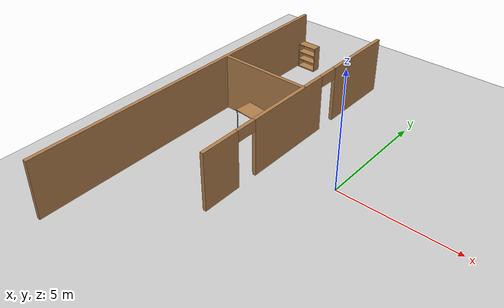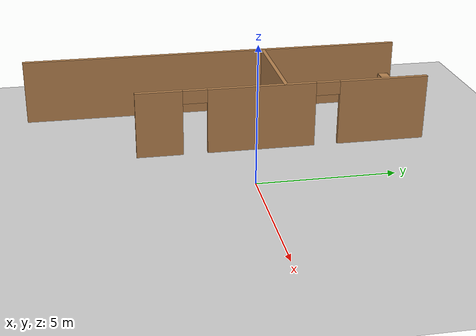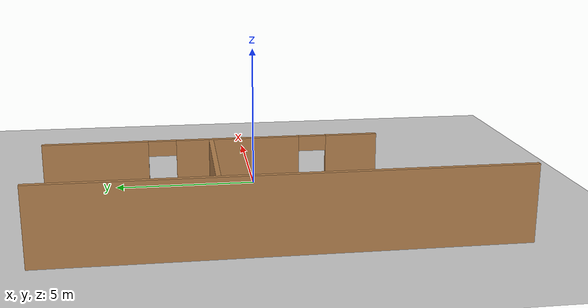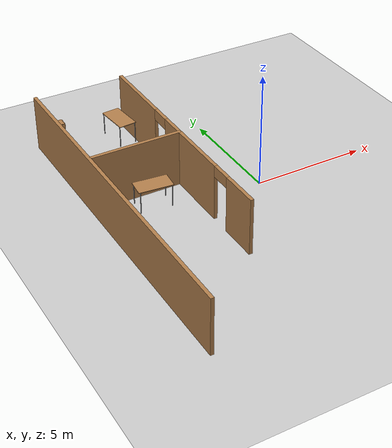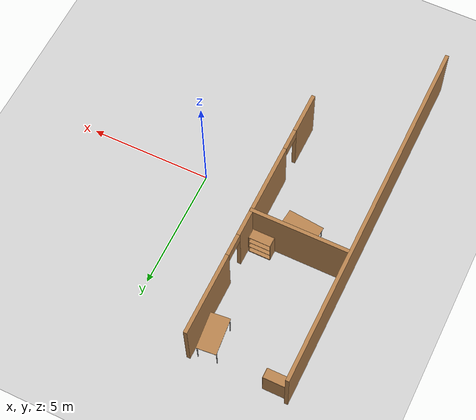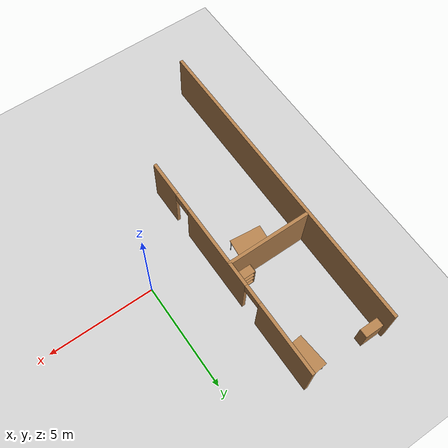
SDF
<sdf version="1.6">
 <world name="default">
  <model name="ground_plane">
   <static>1</static>
   <link name="link">
    <collision name="collision">
     <geometry><plane><normal>0 0 1</normal><size>100 100</size></plane></geometry>
     <surface>
      <contact><collide_bitmask>65535</collide_bitmask></contact>
      <friction><ode><mu>100</mu><mu2>50</mu2></ode></friction>
     </surface>
    </collision>
    <visual name="visual">
     <cast_shadows>0</cast_shadows>
     <geometry><plane><normal>0 0 1</normal><size>100 100</size></plane></geometry>
     <material>
      <script><uri>file://media/materials/scripts/gazebo.material</uri><name>Gazebo/Grey</name></script>
     </material>
    </visual>
   </link>
  </model>
  <model name="table">
   <static>1</static>
   <link name="link">
    <collision name="surface">
     <pose>0 0 1 0 -0 0</pose>
     <geometry><box><size>1.5 0.8 0.03</size></box></geometry>
     <surface><friction><ode><mu>0.6</mu><mu2>0.6</mu2></ode></friction></surface>
    </collision>
    <visual name="visual1">
     <pose>0 0 1 0 -0 0</pose>
     <geometry><box><size>1.5 0.8 0.03</size></box></geometry>
     <material>
      <script><uri>file://media/materials/scripts/gazebo.material</uri><name>Gazebo/Wood</name></script>
     </material>
    </visual>
    <collision name="front_left_leg">
     <pose>0.68 0.38 0.5 0 -0 0</pose>
     <geometry><cylinder><radius>0.02</radius><length>1</length></cylinder></geometry>
    </collision>
    <visual name="front_left_leg">
     <pose>0.68 0.38 0.5 0 -0 0</pose>
     <geometry><cylinder><radius>0.02</radius><length>1</length></cylinder></geometry>
     <material>
      <script><uri>file://media/materials/scripts/gazebo.material</uri><name>Gazebo/Grey</name></script>
     </material>
    </visual>
    <collision name="front_right_leg">
     <pose>0.68 -0.38 0.5 0 -0 0</pose>
     <geometry><cylinder><radius>0.02</radius><length>1</length></cylinder></geometry>
    </collision>
    <visual name="front_right_leg">
     <pose>0.68 -0.38 0.5 0 -0 0</pose>
     <geometry><cylinder><radius>0.02</radius><length>1</length></cylinder></geometry>
     <material>
      <script><uri>file://media/materials/scripts/gazebo.material</uri><name>Gazebo/Grey</name></script>
     </material>
    </visual>
    <collision name="back_right_leg">
     <pose>-0.68 -0.38 0.5 0 -0 0</pose>
     <geometry><cylinder><radius>0.02</radius><length>1</length></cylinder></geometry>
    </collision>
    <visual name="back_right_leg">
     <pose>-0.68 -0.38 0.5 0 -0 0</pose>
     <geometry><cylinder><radius>0.02</radius><length>1</length></cylinder></geometry>
     <material>
      <script><uri>file://media/materials/scripts/gazebo.material</uri><name>Gazebo/Grey</name></script>
     </material>
    </visual>
    <collision name="back_left_leg">
     <pose>-0.68 0.38 0.5 0 -0 0</pose>
     <geometry><cylinder><radius>0.02</radius><length>1</length></cylinder></geometry>
    </collision>
    <visual name="back_left_leg">
     <pose>-0.68 0.38 0.5 0 -0 0</pose>
     <geometry><cylinder><radius>0.02</radius><length>1</length></cylinder></geometry>
     <material>
      <script><uri>file://media/materials/scripts/gazebo.material</uri><name>Gazebo/Grey</name></script>
     </material>
    </visual>
   </link>
   <pose>-4.51795 0.830901 0 0 0 -0.09973</pose>
  </model>
  <model name="table_1">
   <static>1</static>
   <link name="link">
    <collision name="surface">
     <pose>0 0 1 0 -0 0</pose>
     <geometry><box><size>1.5 0.8 0.03</size></box></geometry>
     <surface><friction><ode><mu>0.6</mu><mu2>0.6</mu2></ode></friction></surface>
    </collision>
    <visual name="visual1">
     <pose>0 0 1 0 -0 0</pose>
     <geometry><box><size>1.5 0.8 0.03</size></box></geometry>
     <material>
      <script><uri>file://media/materials/scripts/gazebo.material</uri><name>Gazebo/Wood</name></script>
     </material>
    </visual>
    <collision name="front_left_leg">
     <pose>0.68 0.38 0.5 0 -0 0</pose>
     <geometry><cylinder><radius>0.02</radius><length>1</length></cylinder></geometry>
    </collision>
    <visual name="front_left_leg">
     <pose>0.68 0.38 0.5 0 -0 0</pose>
     <geometry><cylinder><radius>0.02</radius><length>1</length></cylinder></geometry>
     <material>
      <script><uri>file://media/materials/scripts/gazebo.material</uri><name>Gazebo/Grey</name></script>
     </material>
    </visual>
    <collision name="front_right_leg">
     <pose>0.68 -0.38 0.5 0 -0 0</pose>
     <geometry><cylinder><radius>0.02</radius><length>1</length></cylinder></geometry>
    </collision>
    <visual name="front_right_leg">
     <pose>0.68 -0.38 0.5 0 -0 0</pose>
     <geometry><cylinder><radius>0.02</radius><length>1</length></cylinder></geometry>
     <material>
      <script><uri>file://media/materials/scripts/gazebo.material</uri><name>Gazebo/Grey</name></script>
     </material>
    </visual>
    <collision name="back_right_leg">
     <pose>-0.68 -0.38 0.5 0 -0 0</pose>
     <geometry><cylinder><radius>0.02</radius><length>1</length></cylinder></geometry>
    </collision>
    <visual name="back_right_leg">
     <pose>-0.68 -0.38 0.5 0 -0 0</pose>
     <geometry><cylinder><radius>0.02</radius><length>1</length></cylinder></geometry>
     <material>
      <script><uri>file://media/materials/scripts/gazebo.material</uri><name>Gazebo/Grey</name></script>
     </material>
    </visual>
    <collision name="back_left_leg">
     <pose>-0.68 0.38 0.5 0 -0 0</pose>
     <geometry><cylinder><radius>0.02</radius><length>1</length></cylinder></geometry>
    </collision>
    <visual name="back_left_leg">
     <pose>-0.68 0.38 0.5 0 -0 0</pose>
     <geometry><cylinder><radius>0.02</radius><length>1</length></cylinder></geometry>
     <material>
      <script><uri>file://media/materials/scripts/gazebo.material</uri><name>Gazebo/Grey</name></script>
     </material>
    </visual>
   </link>
   <pose>-3.43138 6.15377 0 0 -0 1.6649</pose>
  </model>
  <model name="bookshelf_clone_0">
   <static>1</static>
   <link name="link">
    <inertial><mass>1</mass></inertial>
    <collision name="back">
     <pose>0 0.005 0.6 0 -0 0</pose>
     <geometry><box><size>0.9 0.01 1.2</size></box></geometry>
    </collision>
    <visual name="visual1">
     <pose>0 0.005 0.6 0 -0 0</pose>
     <geometry><box><size>0.9 0.01 1.2</size></box></geometry>
     <material>
      <script><uri>file://media/materials/scripts/gazebo.material</uri><name>Gazebo/Wood</name></script>
     </material>
    </visual>
    <collision name="left_side">
     <pose>0.45 -0.195 0.6 0 -0 0</pose>
     <geometry><box><size>0.02 0.4 1.2</size></box></geometry>
    </collision>
    <visual name="visual2">
     <pose>0.45 -0.195 0.6 0 -0 0</pose>
     <geometry><box><size>0.02 0.4 1.2</size></box></geometry>
     <material>
      <script><uri>file://media/materials/scripts/gazebo.material</uri><name>Gazebo/Wood</name></script>
     </material>
    </visual>
    <collision name="right_side">
     <pose>-0.45 -0.195 0.6 0 -0 0</pose>
     <geometry><box><size>0.02 0.4 1.2</size></box></geometry>
    </collision>
    <visual name="visual3">
     <pose>-0.45 -0.195 0.6 0 -0 0</pose>
     <geometry><box><size>0.02 0.4 1.2</size></box></geometry>
     <material>
      <script><uri>file://media/materials/scripts/gazebo.material</uri><name>Gazebo/Wood</name></script>
     </material>
    </visual>
    <collision name="bottom">
     <pose>0 -0.195 0.03 0 -0 0</pose>
     <geometry><box><size>0.88 0.4 0.06</size></box></geometry>
    </collision>
    <visual name="visual4">
     <pose>0 -0.195 0.03 0 -0 0</pose>
     <geometry><box><size>0.88 0.4 0.06</size></box></geometry>
     <material>
      <script><uri>file://media/materials/scripts/gazebo.material</uri><name>Gazebo/Wood</name></script>
     </material>
    </visual>
    <collision name="top">
     <pose>0 -0.195 1.19 0 -0 0</pose>
     <geometry><box><size>0.88 0.4 0.02</size></box></geometry>
    </collision>
    <visual name="visual5">
     <pose>0 -0.195 1.19 0 -0 0</pose>
     <geometry><box><size>0.88 0.4 0.02</size></box></geometry>
     <material>
      <script><uri>file://media/materials/scripts/gazebo.material</uri><name>Gazebo/Wood</name></script>
     </material>
    </visual>
    <collision name="low_shelf">
     <pose>0 -0.195 0.43 0 -0 0</pose>
     <geometry><box><size>0.88 0.4 0.02</size></box></geometry>
    </collision>
    <visual name="visual6">
     <pose>0 -0.195 0.43 0 -0 0</pose>
     <geometry><box><size>0.88 0.4 0.02</size></box></geometry>
     <material>
      <script><uri>file://media/materials/scripts/gazebo.material</uri><name>Gazebo/Wood</name></script>
     </material>
    </visual>
    <collision name="high_shelf">
     <pose>0 -0.195 0.8 0 -0 0</pose>
     <geometry><box><size>0.88 0.4 0.02</size></box></geometry>
    </collision>
    <visual name="visual7">
     <pose>0 -0.195 0.8 0 -0 0</pose>
     <geometry><box><size>0.88 0.4 0.02</size></box></geometry>
     <material>
      <script><uri>file://media/materials/scripts/gazebo.material</uri><name>Gazebo/Wood</name></script>
     </material>
    </visual>
   </link>
   <pose>-6.25447 6.96238 0 0 0 -3e-06</pose>
  </model>
  <model name="bookshelf_clone_2">
   <static>1</static>
   <link name="link">
    <inertial><mass>1</mass></inertial>
    <collision name="back">
     <pose>0 0.005 0.6 0 -0 0</pose>
     <geometry><box><size>0.9 0.01 1.2</size></box></geometry>
    </collision>
    <visual name="visual1">
     <pose>0 0.005 0.6 0 -0 0</pose>
     <geometry><box><size>0.9 0.01 1.2</size></box></geometry>
     <material>
      <script><uri>file://media/materials/scripts/gazebo.material</uri><name>Gazebo/Wood</name></script>
     </material>
    </visual>
    <collision name="left_side">
     <pose>0.45 -0.195 0.6 0 -0 0</pose>
     <geometry><box><size>0.02 0.4 1.2</size></box></geometry>
    </collision>
    <visual name="visual2">
     <pose>0.45 -0.195 0.6 0 -0 0</pose>
     <geometry><box><size>0.02 0.4 1.2</size></box></geometry>
     <material>
      <script><uri>file://media/materials/scripts/gazebo.material</uri><name>Gazebo/Wood</name></script>
     </material>
    </visual>
    <collision name="right_side">
     <pose>-0.45 -0.195 0.6 0 -0 0</pose>
     <geometry><box><size>0.02 0.4 1.2</size></box></geometry>
    </collision>
    <visual name="visual3">
     <pose>-0.45 -0.195 0.6 0 -0 0</pose>
     <geometry><box><size>0.02 0.4 1.2</size></box></geometry>
     <material>
      <script><uri>file://media/materials/scripts/gazebo.material</uri><name>Gazebo/Wood</name></script>
     </material>
    </visual>
    <collision name="bottom">
     <pose>0 -0.195 0.03 0 -0 0</pose>
     <geometry><box><size>0.88 0.4 0.06</size></box></geometry>
    </collision>
    <visual name="visual4">
     <pose>0 -0.195 0.03 0 -0 0</pose>
     <geometry><box><size>0.88 0.4 0.06</size></box></geometry>
     <material>
      <script><uri>file://media/materials/scripts/gazebo.material</uri><name>Gazebo/Wood</name></script>
     </material>
    </visual>
    <collision name="top">
     <pose>0 -0.195 1.19 0 -0 0</pose>
     <geometry><box><size>0.88 0.4 0.02</size></box></geometry>
    </collision>
    <visual name="visual5">
     <pose>0 -0.195 1.19 0 -0 0</pose>
     <geometry><box><size>0.88 0.4 0.02</size></box></geometry>
     <material>
      <script><uri>file://media/materials/scripts/gazebo.material</uri><name>Gazebo/Wood</name></script>
     </material>
    </visual>
    <collision name="low_shelf">
     <pose>0 -0.195 0.43 0 -0 0</pose>
     <geometry><box><size>0.88 0.4 0.02</size></box></geometry>
    </collision>
    <visual name="visual6">
     <pose>0 -0.195 0.43 0 -0 0</pose>
     <geometry><box><size>0.88 0.4 0.02</size></box></geometry>
     <material>
      <script><uri>file://media/materials/scripts/gazebo.material</uri><name>Gazebo/Wood</name></script>
     </material>
    </visual>
    <collision name="high_shelf">
     <pose>0 -0.195 0.8 0 -0 0</pose>
     <geometry><box><size>0.88 0.4 0.02</size></box></geometry>
    </collision>
    <visual name="visual7">
     <pose>0 -0.195 0.8 0 -0 0</pose>
     <geometry><box><size>0.88 0.4 0.02</size></box></geometry>
     <material>
      <script><uri>file://media/materials/scripts/gazebo.material</uri><name>Gazebo/Wood</name></script>
     </material>
    </visual>
   </link>
   <pose>-3.382 1.7842 0 0 -0 3.14159</pose>
  </model>
  <model name="my_building_0">
   <link name="Wall_11">
    <pose>-4.90694 1.96963 0 0 0 -1.5708</pose>
    <visual name="Wall_11_Visual_0">
     <pose>-3.78451 0 1.25 0 -0 0</pose>
     <geometry><box><size>3.37099 0.15 2.5</size></box></geometry>
     <material>
      <script><uri>file://media/materials/scripts/gazebo.material</uri><name>Gazebo/Wood</name></script>
      <ambient>1 1 1 1</ambient>
      <diffuse>1 1 1 1</diffuse>
      <specular>0.2 0.2 0.2 1</specular>
      <emissive>0 0 0 1</emissive>
      <shader type="pixel"/>
     </material>
     <meta><layer>0</layer></meta>
    </visual>
    <visual name="Wall_11_Visual_1">
     <pose>0.822358 0 1.25 0 -0 0</pose>
     <geometry><box><size>4.04274 0.15 2.5</size></box></geometry>
     <material>
      <script><uri>file://media/materials/scripts/gazebo.material</uri><name>Gazebo/Wood</name></script>
      <ambient>1 1 1 1</ambient>
      <diffuse>1 1 1 1</diffuse>
      <specular>0.2 0.2 0.2 1</specular>
      <emissive>0 0 0 1</emissive>
      <shader type="pixel"/>
     </material>
     <meta><layer>0</layer></meta>
    </visual>
    <visual name="Wall_11_Visual_2">
     <pose>4.60686 0 1.25 0 -0 0</pose>
     <geometry><box><size>1.72627 0.15 2.5</size></box></geometry>
     <material>
      <script><uri>file://media/materials/scripts/gazebo.material</uri><name>Gazebo/Wood</name></script>
      <ambient>1 1 1 1</ambient>
      <diffuse>1 1 1 1</diffuse>
      <specular>0.2 0.2 0.2 1</specular>
      <emissive>0 0 0 1</emissive>
      <shader type="pixel"/>
     </material>
     <meta><layer>0</layer></meta>
    </visual>
    <visual name="Wall_11_Visual_3">
     <pose>-1.64901 0 2.25 0 -0 0</pose>
     <geometry><box><size>0.9 0.15 0.5</size></box></geometry>
     <material>
      <script><uri>file://media/materials/scripts/gazebo.material</uri><name>Gazebo/Wood</name></script>
      <ambient>1 1 1 1</ambient>
      <diffuse>1 1 1 1</diffuse>
      <specular>0.2 0.2 0.2 1</specular>
      <emissive>0 0 0 1</emissive>
      <shader type="pixel"/>
     </material>
     <meta><layer>0</layer></meta>
    </visual>
    <visual name="Wall_11_Visual_4">
     <pose>3.29373 0 2.25 0 -0 0</pose>
     <geometry><box><size>0.9 0.15 0.5</size></box></geometry>
     <material>
      <script><uri>file://media/materials/scripts/gazebo.material</uri><name>Gazebo/Wood</name></script>
      <ambient>1 1 1 1</ambient>
      <diffuse>1 1 1 1</diffuse>
      <specular>0.2 0.2 0.2 1</specular>
      <emissive>0 0 0 1</emissive>
      <shader type="pixel"/>
     </material>
     <meta><layer>0</layer></meta>
    </visual>
    <collision name="Wall_11_Collision_0">
     <pose>-3.78451 0 1.25 0 -0 0</pose>
     <geometry><box><size>3.37099 0.15 2.5</size></box></geometry>
     <surface>
      <friction>
       <ode><mu>1</mu><mu2>1</mu2><fdir1>0 0 0</fdir1><slip1>0</slip1><slip2>0</slip2></ode>
       <torsional>
        <coefficient>1</coefficient>
        <patch_radius>0</patch_radius>
        <surface_radius>0</surface_radius>
        <use_patch_radius>1</use_patch_radius>
        <ode><slip>0</slip></ode>
       </torsional>
      </friction>
      <bounce><restitution_coefficient>0</restitution_coefficient><threshold>1e+06</threshold></bounce>
      <contact>
       <collide_without_contact>0</collide_without_contact>
       <collide_without_contact_bitmask>1</collide_without_contact_bitmask>
       <collide_bitmask>1</collide_bitmask>
       <ode>
        <soft_cfm>0</soft_cfm>
        <soft_erp>0.2</soft_erp>
        <kp>1e+13</kp>
        <kd>1</kd>
        <max_vel>0.01</max_vel>
        <min_depth>0</min_depth>
       </ode>
       <bullet>
        <split_impulse>1</split_impulse>
        <split_impulse_penetration_threshold>-0.01</split_impulse_penetration_threshold>
        <soft_cfm>0</soft_cfm>
        <soft_erp>0.2</soft_erp>
        <kp>1e+13</kp>
        <kd>1</kd>
       </bullet>
      </contact>
     </surface>
    </collision>
    <collision name="Wall_11_Collision_1">
     <pose>0.822358 0 1.25 0 -0 0</pose>
     <geometry><box><size>4.04274 0.15 2.5</size></box></geometry>
     <surface>
      <friction>
       <ode><mu>1</mu><mu2>1</mu2><fdir1>0 0 0</fdir1><slip1>0</slip1><slip2>0</slip2></ode>
       <torsional>
        <coefficient>1</coefficient>
        <patch_radius>0</patch_radius>
        <surface_radius>0</surface_radius>
        <use_patch_radius>1</use_patch_radius>
        <ode><slip>0</slip></ode>
       </torsional>
      </friction>
      <bounce><restitution_coefficient>0</restitution_coefficient><threshold>1e+06</threshold></bounce>
      <contact>
       <collide_without_contact>0</collide_without_contact>
       <collide_without_contact_bitmask>1</collide_without_contact_bitmask>
       <collide_bitmask>1</collide_bitmask>
       <ode>
        <soft_cfm>0</soft_cfm>
        <soft_erp>0.2</soft_erp>
        <kp>1e+13</kp>
        <kd>1</kd>
        <max_vel>0.01</max_vel>
        <min_depth>0</min_depth>
       </ode>
       <bullet>
        <split_impulse>1</split_impulse>
        <split_impulse_penetration_threshold>-0.01</split_impulse_penetration_threshold>
        <soft_cfm>0</soft_cfm>
        <soft_erp>0.2</soft_erp>
        <kp>1e+13</kp>
        <kd>1</kd>
       </bullet>
      </contact>
     </surface>
    </collision>
    <collision name="Wall_11_Collision_2">
     <pose>4.60686 0 1.25 0 -0 0</pose>
     <geometry><box><size>1.72627 0.15 2.5</size></box></geometry>
     <surface>
      <friction>
       <ode><mu>1</mu><mu2>1</mu2><fdir1>0 0 0</fdir1><slip1>0</slip1><slip2>0</slip2></ode>
       <torsional>
        <coefficient>1</coefficient>
        <patch_radius>0</patch_radius>
        <surface_radius>0</surface_radius>
        <use_patch_radius>1</use_patch_radius>
        <ode><slip>0</slip></ode>
       </torsional>
      </friction>
      <bounce><restitution_coefficient>0</restitution_coefficient><threshold>1e+06</threshold></bounce>
      <contact>
       <collide_without_contact>0</collide_without_contact>
       <collide_without_contact_bitmask>1</collide_without_contact_bitmask>
       <collide_bitmask>1</collide_bitmask>
       <ode>
        <soft_cfm>0</soft_cfm>
        <soft_erp>0.2</soft_erp>
        <kp>1e+13</kp>
        <kd>1</kd>
        <max_vel>0.01</max_vel>
        <min_depth>0</min_depth>
       </ode>
       <bullet>
        <split_impulse>1</split_impulse>
        <split_impulse_penetration_threshold>-0.01</split_impulse_penetration_threshold>
        <soft_cfm>0</soft_cfm>
        <soft_erp>0.2</soft_erp>
        <kp>1e+13</kp>
        <kd>1</kd>
       </bullet>
      </contact>
     </surface>
    </collision>
    <collision name="Wall_11_Collision_3">
     <pose>-1.64901 0 2.25 0 -0 0</pose>
     <geometry><box><size>0.9 0.15 0.5</size></box></geometry>
     <surface>
      <friction>
       <ode><mu>1</mu><mu2>1</mu2><fdir1>0 0 0</fdir1><slip1>0</slip1><slip2>0</slip2></ode>
       <torsional>
        <coefficient>1</coefficient>
        <patch_radius>0</patch_radius>
        <surface_radius>0</surface_radius>
        <use_patch_radius>1</use_patch_radius>
        <ode><slip>0</slip></ode>
       </torsional>
      </friction>
      <bounce><restitution_coefficient>0</restitution_coefficient><threshold>1e+06</threshold></bounce>
      <contact>
       <collide_without_contact>0</collide_without_contact>
       <collide_without_contact_bitmask>1</collide_without_contact_bitmask>
       <collide_bitmask>1</collide_bitmask>
       <ode>
        <soft_cfm>0</soft_cfm>
        <soft_erp>0.2</soft_erp>
        <kp>1e+13</kp>
        <kd>1</kd>
        <max_vel>0.01</max_vel>
        <min_depth>0</min_depth>
       </ode>
       <bullet>
        <split_impulse>1</split_impulse>
        <split_impulse_penetration_threshold>-0.01</split_impulse_penetration_threshold>
        <soft_cfm>0</soft_cfm>
        <soft_erp>0.2</soft_erp>
        <kp>1e+13</kp>
        <kd>1</kd>
       </bullet>
      </contact>
     </surface>
    </collision>
    <collision name="Wall_11_Collision_4">
     <pose>3.29373 0 2.25 0 -0 0</pose>
     <geometry><box><size>0.9 0.15 0.5</size></box></geometry>
     <surface>
      <friction>
       <ode><mu>1</mu><mu2>1</mu2><fdir1>0 0 0</fdir1><slip1>0</slip1><slip2>0</slip2></ode>
       <torsional>
        <coefficient>1</coefficient>
        <patch_radius>0</patch_radius>
        <surface_radius>0</surface_radius>
        <use_patch_radius>1</use_patch_radius>
        <ode><slip>0</slip></ode>
       </torsional>
      </friction>
      <bounce><restitution_coefficient>0</restitution_coefficient><threshold>1e+06</threshold></bounce>
      <contact>
       <collide_without_contact>0</collide_without_contact>
       <collide_without_contact_bitmask>1</collide_without_contact_bitmask>
       <collide_bitmask>1</collide_bitmask>
       <ode>
        <soft_cfm>0</soft_cfm>
        <soft_erp>0.2</soft_erp>
        <kp>1e+13</kp>
        <kd>1</kd>
        <max_vel>0.01</max_vel>
        <min_depth>0</min_depth>
       </ode>
       <bullet>
        <split_impulse>1</split_impulse>
        <split_impulse_penetration_threshold>-0.01</split_impulse_penetration_threshold>
        <soft_cfm>0</soft_cfm>
        <soft_erp>0.2</soft_erp>
        <kp>1e+13</kp>
        <kd>1</kd>
       </bullet>
      </contact>
     </surface>
    </collision>
   </link>
   <link name="Wall_15">
    <pose>-6.84919 2.03204 0 0 -0 3.14159</pose>
    <inertial>
     <mass>1</mass>
     <inertia><ixx>1</ixx><ixy>0</ixy><ixz>0</ixz><iyy>1</iyy><iyz>0</iyz><izz>1</izz></inertia>
    </inertial>
    <visual name="ModelPreview_1::Wall_15::visual_1">
     <pose>0 0 1.25 0 -0 0</pose>
     <geometry><box><size>4 0.15 2.5</size></box></geometry>
     <material>
      <script><uri>file://media/materials/scripts/gazebo.material</uri><name>Gazebo/Wood</name></script>
      <ambient>0.922 0.808 0.616 1</ambient>
      <diffuse>1 1 1 1</diffuse>
      <specular>0.2 0.2 0.2 1</specular>
      <emissive>0 0 0 1</emissive>
      <shader type="vertex"><normal_map>__default__</normal_map></shader>
     </material>
     <meta><layer>0</layer></meta>
    </visual>
    <visual name="Wall_15_Visual">
     <pose>0 0 1.25 0 -0 0</pose>
     <geometry><box><size>4 0.15 2.5</size></box></geometry>
     <material>
      <script><uri>file://media/materials/scripts/gazebo.material</uri><name>Gazebo/White</name></script>
      <ambient>0.922 0.808 0.616 1</ambient>
      <diffuse>1 1 1 1</diffuse>
      <specular>0.2 0.2 0.2 1</specular>
      <emissive>0 0 0 1</emissive>
      <shader type="vertex"><normal_map>__default__</normal_map></shader>
     </material>
     <meta><layer>0</layer></meta>
    </visual>
    <collision name="Wall_15_Collision">
     <pose>0 0 1.25 0 -0 0</pose>
     <geometry><box><size>4 0.15 2.5</size></box></geometry>
     <surface>
      <friction>
       <ode><mu>1</mu><mu2>1</mu2><fdir1>0 0 0</fdir1><slip1>0</slip1><slip2>0</slip2></ode>
       <torsional>
        <coefficient>1</coefficient>
        <patch_radius>0</patch_radius>
        <surface_radius>0</surface_radius>
        <use_patch_radius>1</use_patch_radius>
        <ode><slip>0</slip></ode>
       </torsional>
      </friction>
      <bounce><restitution_coefficient>0</restitution_coefficient><threshold>1e+06</threshold></bounce>
      <contact>
       <collide_without_contact>0</collide_without_contact>
       <collide_without_contact_bitmask>1</collide_without_contact_bitmask>
       <collide_bitmask>1</collide_bitmask>
       <ode>
        <soft_cfm>0</soft_cfm>
        <soft_erp>0.2</soft_erp>
        <kp>1e+13</kp>
        <kd>1</kd>
        <max_vel>0.01</max_vel>
        <min_depth>0</min_depth>
       </ode>
       <bullet>
        <split_impulse>1</split_impulse>
        <split_impulse_penetration_threshold>-0.01</split_impulse_penetration_threshold>
        <soft_cfm>0</soft_cfm>
        <soft_erp>0.2</soft_erp>
        <kp>1e+13</kp>
        <kd>1</kd>
       </bullet>
      </contact>
     </surface>
    </collision>
   </link>
   <link name="Wall_2">
    <pose>-8.90706 0 0 0 0 -1.5708</pose>
    <inertial>
     <mass>1</mass>
     <inertia><ixx>1</ixx><ixy>0</ixy><ixz>0</ixz><iyy>1</iyy><iyz>0</iyz><izz>1</izz></inertia>
    </inertial>
    <visual name="Wall_2_Visual">
     <pose>0 0 1.25 0 -0 0</pose>
     <geometry><box><size>15 0.15 2.5</size></box></geometry>
     <material>
      <script><uri>file://media/materials/scripts/gazebo.material</uri><name>Gazebo/Wood</name></script>
      <ambient>1 1 1 1</ambient>
      <diffuse>1 1 1 1</diffuse>
      <specular>0.2 0.2 0.2 1</specular>
      <emissive>0 0 0 1</emissive>
      <shader type="pixel"><normal_map>__default__</normal_map></shader>
     </material>
     <meta><layer>0</layer></meta>
    </visual>
    <collision name="Wall_2_Collision">
     <pose>0 0 1.25 0 -0 0</pose>
     <geometry><box><size>15 0.15 2.5</size></box></geometry>
     <surface>
      <friction>
       <ode><mu>1</mu><mu2>1</mu2><fdir1>0 0 0</fdir1><slip1>0</slip1><slip2>0</slip2></ode>
       <torsional>
        <coefficient>1</coefficient>
        <patch_radius>0</patch_radius>
        <surface_radius>0</surface_radius>
        <use_patch_radius>1</use_patch_radius>
        <ode><slip>0</slip></ode>
       </torsional>
      </friction>
      <bounce><restitution_coefficient>0</restitution_coefficient><threshold>1e+06</threshold></bounce>
      <contact>
       <collide_without_contact>0</collide_without_contact>
       <collide_without_contact_bitmask>1</collide_without_contact_bitmask>
       <collide_bitmask>1</collide_bitmask>
       <ode>
        <soft_cfm>0</soft_cfm>
        <soft_erp>0.2</soft_erp>
        <kp>1e+13</kp>
        <kd>1</kd>
        <max_vel>0.01</max_vel>
        <min_depth>0</min_depth>
       </ode>
       <bullet>
        <split_impulse>1</split_impulse>
        <split_impulse_penetration_threshold>-0.01</split_impulse_penetration_threshold>
        <soft_cfm>0</soft_cfm>
        <soft_erp>0.2</soft_erp>
        <kp>1e+13</kp>
        <kd>1</kd>
       </bullet>
      </contact>
     </surface>
    </collision>
   </link>
   <static>1</static>
   <pose>2.08113 -0.36477 0 0 -0 0</pose>
  </model>
 </world>
</sdf>
